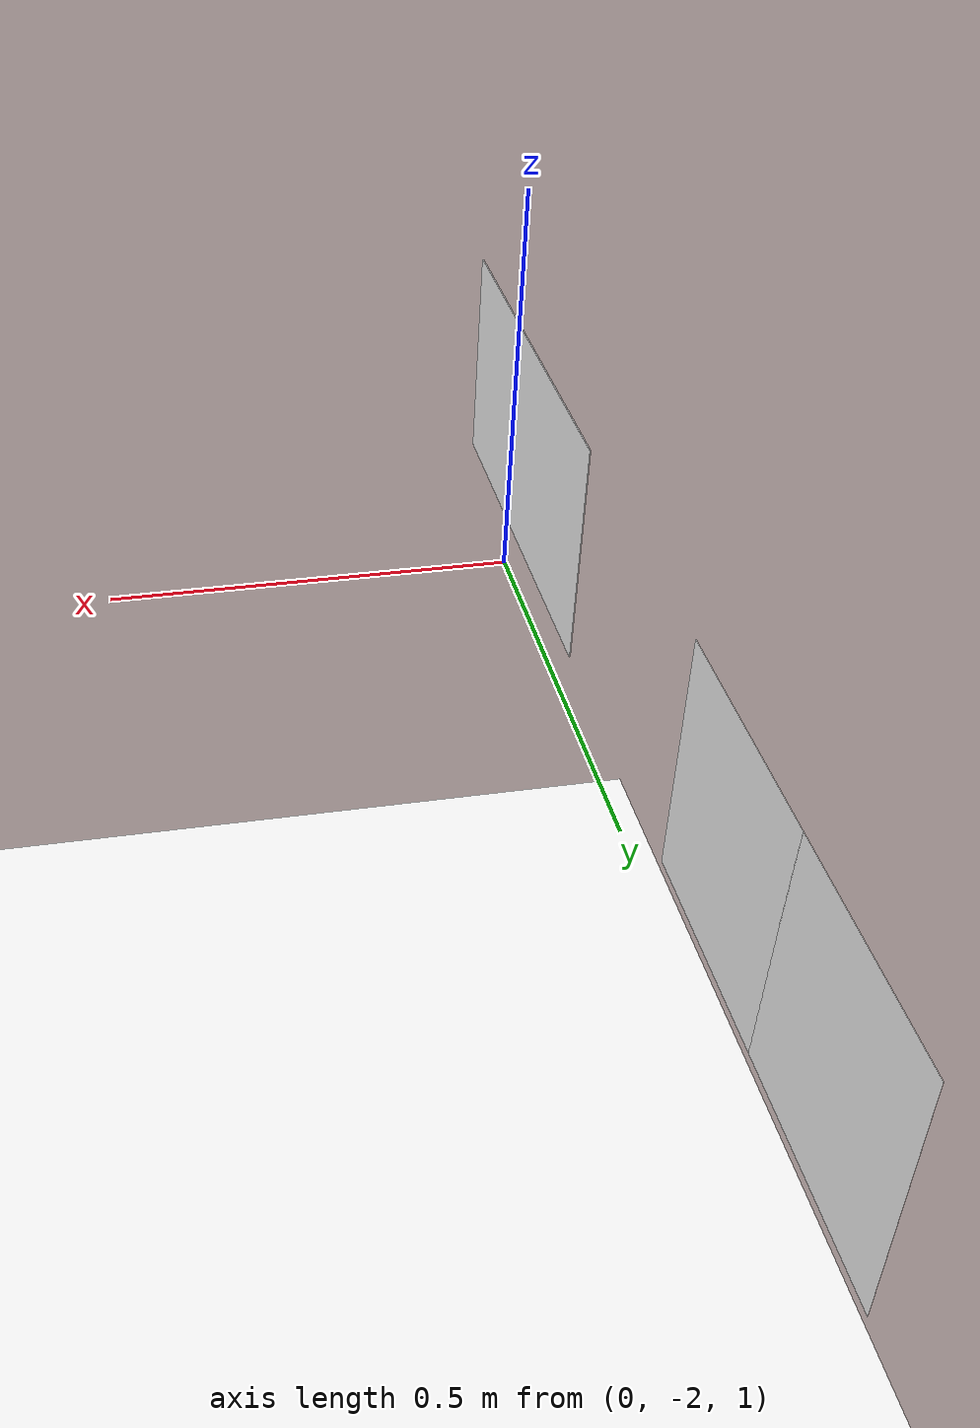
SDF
<?xml version="1.0"?>
<sdf version="1.8">
  <world name="default">
    <plugin
      filename="gz-sim-physics-system"
      name="gz::sim::systems::Physics">
    </plugin>
    <plugin
      filename="gz-sim-sensors-system"
      name="gz::sim::systems::Sensors">
      <render_engine>ogre2</render_engine>
    </plugin>
    <plugin
      filename="gz-sim-scene-broadcaster-system"
      name="gz::sim::systems::SceneBroadcaster">
    </plugin>
    <plugin
      filename="gz-sim-user-commands-system"
      name="gz::sim::systems::UserCommands">
    </plugin>

    <plugin filename="gz-sim-imu-system"
        name="gz::sim::systems::Imu">
    </plugin>

    <light name="sun2" type="directional">
      <cast_shadows>true</cast_shadows>
      <pose>0 0 10 0 0 0</pose>
      <diffuse>0.8 0.8 0.8 1</diffuse>
      <specular>0.2 0.2 0.2 1</specular>
      <attenuation>
        <range>1000</range>
        <constant>0.9</constant>
        <linear>0.01</linear>
        <quadratic>0.001</quadratic>
      </attenuation>
      <direction>-0.5 0.1 -0.9</direction>
    </light>

    <model name="ground_plane">
      <static>true</static>
      <link name="link">
        <collision name="collision">
          <geometry>
            <plane>
              <normal>0 0 1</normal>
              <size>100 100</size>
            </plane>
          </geometry>
          <surface>
            <contact>
              <collide_bitmask>0xffff</collide_bitmask>
            </contact>
            <laser_retro>100.0</laser_retro>
          </surface>
        </collision>
        <visual name="visual">
          <geometry>
            <plane>
              <normal>0 0 1</normal>
              <size>100 100</size>
            </plane>
          </geometry>
          <material>
            <ambient>0.8 0.8 0.8 1</ambient>
            <diffuse>0.8 0.8 0.8 1</diffuse>
            <specular>0.8 0.8 0.8 1</specular>
          </material>
        </visual>
      </link>
    </model>

    <include>
	  <name>Track</name>
      <uri>model://ackm_description/models/FNR2022_map</uri>
      <pose>-0 0 0 0 0 1.5708</pose>
    </include>

  	<include>
	  <uri>model://ackm_description/models/videopanel3</uri>
	  <pose>0 -1.55 1.2 0 0 1.5708</pose>
	</include>

  </world>
</sdf>

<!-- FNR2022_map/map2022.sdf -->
<sdf version="1.4">
<model name="FNR2022_map">
  <static>true</static>
    <link name="link">
      <collision name="collision">
        <geometry>
			<box>
			  <size>22 29.9 0.01</size>
			</box>
        </geometry>
        <surface>
          <friction>
            <ode>
              <mu>100</mu>
              <mu2>50</mu2>
            </ode>
          </friction>
        </surface>
      </collision>
		<visual name="visual">
		  <geometry>
			<box>
			  <size>22 29.9 0.01</size>
			</box>
		  </geometry>

		  <material>
			<diffuse>1 1 1 1</diffuse>
			<pbr>
			  <metal>
				<albedo_map>materials/textures/track.png</albedo_map>
			  </metal>
			</pbr>
		  </material>
		</visual>
    </link>
  </model>
</sdf>

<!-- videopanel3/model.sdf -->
<sdf version="1.6">
<model name="videopanel3">
  <static>true</static>
    <link name="lcd1">
	  <pose>-0.4 0 0 1.5708 0 3.1415</pose>
      <collision name="collision">
        <geometry>
			<box>
			  <size>0.2673 0.4758 0.01</size>
			</box>
        </geometry>
        <surface>
          <friction>
            <ode>
              <mu>100</mu>
              <mu2>50</mu2>
            </ode>
          </friction>
        </surface>
      </collision>
		<visual name="screen1f">
		  <pose>0 0 0.0005 0 0 0</pose>
		  <geometry>
			<plane>
			  <normal>0 0 1</normal>
			  <size>0.4758 0.2673</size>
			</plane>
		  </geometry>

		  <material>
			<diffuse>1 1 1 1</diffuse>
			<pbr>
			  <metal>
				<albedo_map>materials/textures/stop.png</albedo_map>
			  </metal>
			</pbr>
		  </material>
		</visual>
		<visual name="screen1b">
		  <pose>0 0 -0.0005 3.1415 0 3.1415</pose>
		  <geometry>
			<plane>
			  <normal>0 0 1</normal>
			  <size>0.4758 0.2673</size>
			</plane>
		  </geometry>

		  <material>
			<diffuse>1 1 1 1</diffuse>
			<pbr>
			  <metal>
				<albedo_map>materials/textures/stop.png</albedo_map>
			  </metal>
			</pbr>
		  </material>
		</visual>
    </link>
    <link name="lcd2">
	  <pose>0.4 0 0 1.5708 0 1.5708</pose>
      <collision name="collision">
        <geometry>
			<box>
			  <size>0.2673 0.4758 0.01</size>
			</box>
        </geometry>
        <surface>
          <friction>
            <ode>
              <mu>100</mu>
              <mu2>50</mu2>
            </ode>
          </friction>
        </surface>
      </collision>
		<visual name="screen2f">
		  <pose>0 0 0.0005 0 -1.5708 0</pose>
		  <geometry>
			<plane>
			  <normal>0 0 1</normal>
			  <size>0.4758 0.2673</size>
			</plane>
		  </geometry>

		  <material>
			<diffuse>1 1 1 1</diffuse>
			<pbr>
			  <metal>
				<albedo_map>materials/textures/stop.png</albedo_map>
			  </metal>
			</pbr>
		  </material>
		</visual>
		<visual name="screen2b">
		  <pose>0 0 -0.0005 0 1.5708 0</pose>
		  <geometry>
			<plane>
			  <normal>0 0 1</normal>
			  <size>0.4758 0.2673</size>
			</plane>
		  </geometry>

		  <material>
			<diffuse>1 1 1 1</diffuse>
			<pbr>
			  <metal>
				<albedo_map>materials/textures/stop.png</albedo_map>
			  </metal>
			</pbr>
		  </material>
		</visual>
    </link>

  </model>
</sdf>
